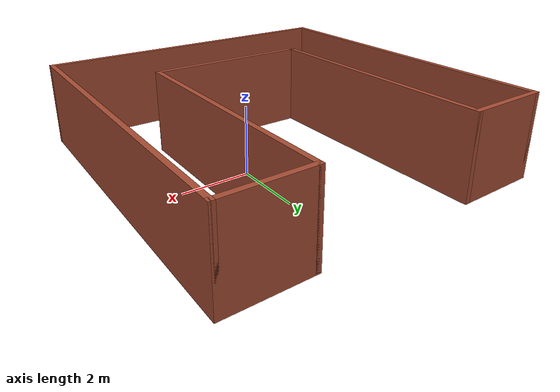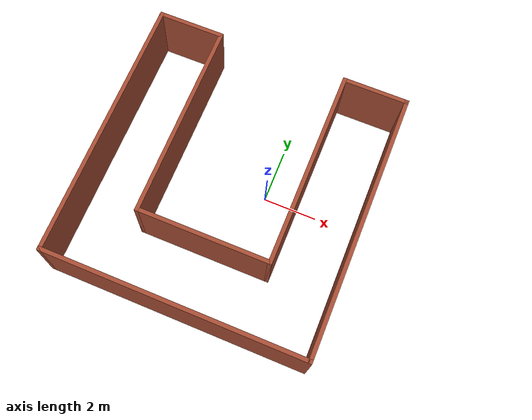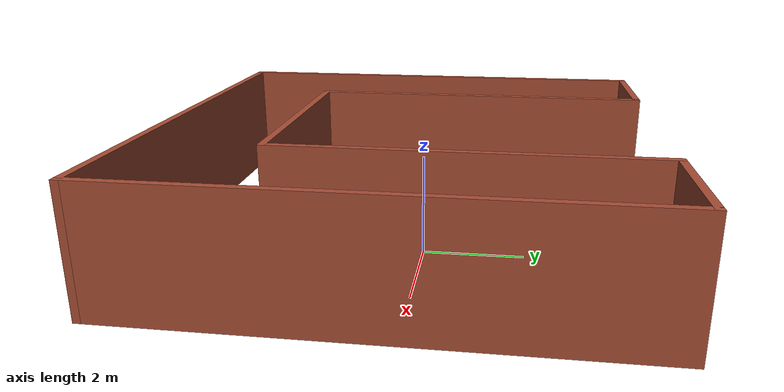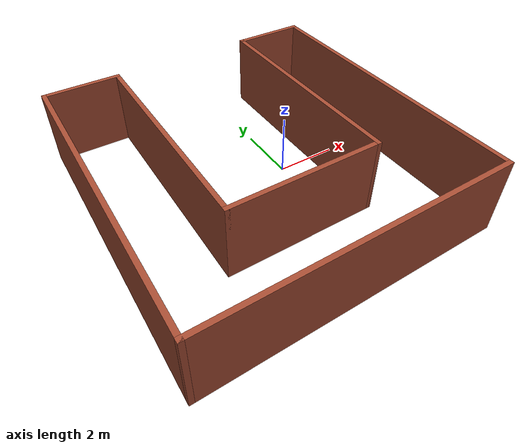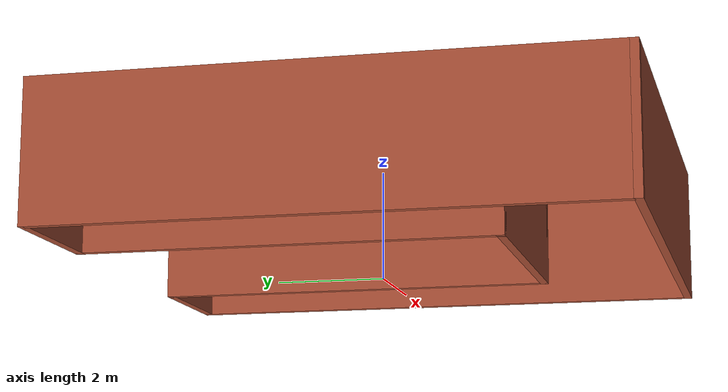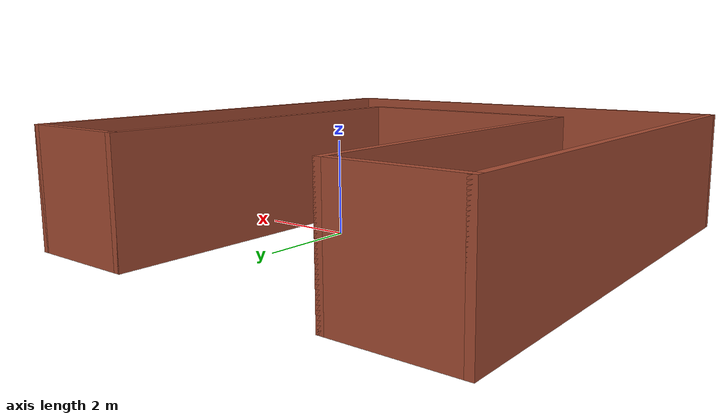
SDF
<?xml version='1.0'?>
<sdf version='1.6'>
  <model name='HomeServiceRoboWorld'>
    <pose frame=''>-1.249 -0.399 0 0 -0 0</pose>
    <link name='Wall_10'>
      <collision name='Wall_10_Collision'>
        <geometry>
          <box>
            <size>7.5 0.15 2.5</size>
          </box>
        </geometry>
        <pose frame=''>0 0 1.25 0 -0 0</pose>
      </collision>
      <visual name='Wall_10_Visual'>
        <pose frame=''>0 0 1.25 0 -0 0</pose>
        <geometry>
          <box>
            <size>7.5 0.15 2.5</size>
          </box>
        </geometry>
        <material>
          <script>
            <uri>file://media/materials/scripts/gazebo.material</uri>
            <name>Gazebo/Bricks</name>
          </script>
          <ambient>0.760784 0.662745 0.627451 1</ambient>
        </material>
        <meta>
          <layer>0</layer>
        </meta>
      </visual>
      <pose frame=''>2.45 1.25 0 0 -0 1.5708</pose>
    </link>
    <link name='Wall_11'>
      <collision name='Wall_11_Collision'>
        <geometry>
          <box>
            <size>2.5 0.15 2.5</size>
          </box>
        </geometry>
        <pose frame=''>0 0 1.25 0 -0 0</pose>
      </collision>
      <visual name='Wall_11_Visual'>
        <pose frame=''>0 0 1.25 0 -0 0</pose>
        <geometry>
          <box>
            <size>2.5 0.15 2.5</size>
          </box>
        </geometry>
        <material>
          <script>
            <uri>file://media/materials/scripts/gazebo.material</uri>
            <name>Gazebo/Bricks</name>
          </script>
          <ambient>0.760784 0.662745 0.627451 1</ambient>
        </material>
        <meta>
          <layer>0</layer>
        </meta>
      </visual>
      <pose frame=''>3.625 4.925 0 0 -0 0</pose>
    </link>
    <link name='Wall_12'>
      <collision name='Wall_12_Collision'>
        <geometry>
          <box>
            <size>10 0.15 2.5</size>
          </box>
        </geometry>
        <pose frame=''>0 0 1.25 0 -0 0</pose>
      </collision>
      <visual name='Wall_12_Visual'>
        <pose frame=''>0 0 1.25 0 -0 0</pose>
        <geometry>
          <box>
            <size>10 0.15 2.5</size>
          </box>
        </geometry>
        <material>
          <script>
            <uri>file://media/materials/scripts/gazebo.material</uri>
            <name>Gazebo/Bricks</name>
          </script>
          <ambient>0.760784 0.662745 0.627451 1</ambient>
        </material>
        <meta>
          <layer>0</layer>
        </meta>
      </visual>
      <pose frame=''>4.8 0 0 0 0 -1.5708</pose>
    </link>
    <link name='Wall_13'>
      <collision name='Wall_13_Collision'>
        <geometry>
          <box>
            <size>9.75 0.15 2.5</size>
          </box>
        </geometry>
        <pose frame=''>0 0 1.25 0 -0 0</pose>
      </collision>
      <visual name='Wall_13_Visual'>
        <pose frame=''>0 0 1.25 0 -0 0</pose>
        <geometry>
          <box>
            <size>9.75 0.15 2.5</size>
          </box>
        </geometry>
        <material>
          <script>
            <uri>file://media/materials/scripts/gazebo.material</uri>
            <name>Gazebo/Bricks</name>
          </script>
          <ambient>0.760784 0.662745 0.627451 1</ambient>
        </material>
        <meta>
          <layer>0</layer>
        </meta>
      </visual>
      <pose frame=''>0 -4.925 0 0 -0 3.14159</pose>
    </link>
    <link name='Wall_17'>
      <collision name='Wall_17_Collision'>
        <geometry>
          <box>
            <size>10 0.15 2.5</size>
          </box>
        </geometry>
        <pose frame=''>0 0 1.25 0 -0 0</pose>
      </collision>
      <visual name='Wall_17_Visual'>
        <pose frame=''>0 0 1.25 0 -0 0</pose>
        <geometry>
          <box>
            <size>10 0.15 2.5</size>
          </box>
        </geometry>
        <material>
          <script>
            <uri>file://media/materials/scripts/gazebo.material</uri>
            <name>Gazebo/Bricks</name>
          </script>
          <ambient>0.760784 0.662745 0.627451 1</ambient>
        </material>
        <meta>
          <layer>0</layer>
        </meta>
      </visual>
      <pose frame=''>-4.8 0 0 0 -0 1.5708</pose>
    </link>
    <link name='Wall_18'>
      <collision name='Wall_18_Collision'>
        <geometry>
          <box>
            <size>2.55 0.15 2.5</size>
          </box>
        </geometry>
        <pose frame=''>0 0 1.25 0 -0 0</pose>
      </collision>
      <visual name='Wall_18_Visual'>
        <pose frame=''>0 0 1.25 0 -0 0</pose>
        <geometry>
          <box>
            <size>2.55 0.15 2.5</size>
          </box>
        </geometry>
        <material>
          <script>
            <uri>file://media/materials/scripts/gazebo.material</uri>
            <name>Gazebo/Bricks</name>
          </script>
          <ambient>0.760784 0.662745 0.627451 1</ambient>
        </material>
        <meta>
          <layer>0</layer>
        </meta>
      </visual>
      <pose frame=''>-3.6 4.925 0 0 -0 0</pose>
    </link>
    <link name='Wall_8'>
      <collision name='Wall_8_Collision'>
        <geometry>
          <box>
            <size>7.5 0.15 2.5</size>
          </box>
        </geometry>
        <pose frame=''>0 0 1.25 0 -0 0</pose>
      </collision>
      <visual name='Wall_8_Visual'>
        <pose frame=''>0 0 1.25 0 -0 0</pose>
        <geometry>
          <box>
            <size>7.5 0.15 2.5</size>
          </box>
        </geometry>
        <material>
          <script>
            <uri>file://media/materials/scripts/gazebo.material</uri>
            <name>Gazebo/Bricks</name>
          </script>
          <ambient>0.760784 0.662745 0.627451 1</ambient>
        </material>
        <meta>
          <layer>0</layer>
        </meta>
      </visual>
      <pose frame=''>-2.4 1.25 0 0 0 -1.5708</pose>
    </link>
    <link name='Wall_9'>
      <collision name='Wall_9_Collision'>
        <geometry>
          <box>
            <size>5 0.15 2.5</size>
          </box>
        </geometry>
        <pose frame=''>0 0 1.25 0 -0 0</pose>
      </collision>
      <visual name='Wall_9_Visual'>
        <pose frame=''>0 0 1.25 0 -0 0</pose>
        <geometry>
          <box>
            <size>5 0.15 2.5</size>
          </box>
        </geometry>
        <material>
          <script>
            <uri>file://media/materials/scripts/gazebo.material</uri>
            <name>Gazebo/Bricks</name>
          </script>
          <ambient>0.760784 0.662745 0.627451 1</ambient>
        </material>
        <meta>
          <layer>0</layer>
        </meta>
      </visual>
      <pose frame=''>0.025 -2.425 0 0 -0 0</pose>
    </link>
    <static>1</static>
  </model>
</sdf>
